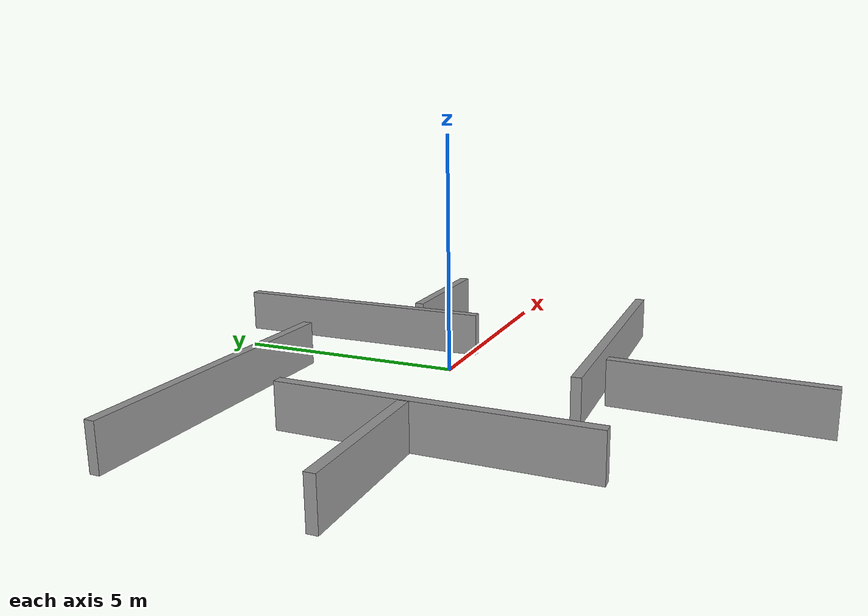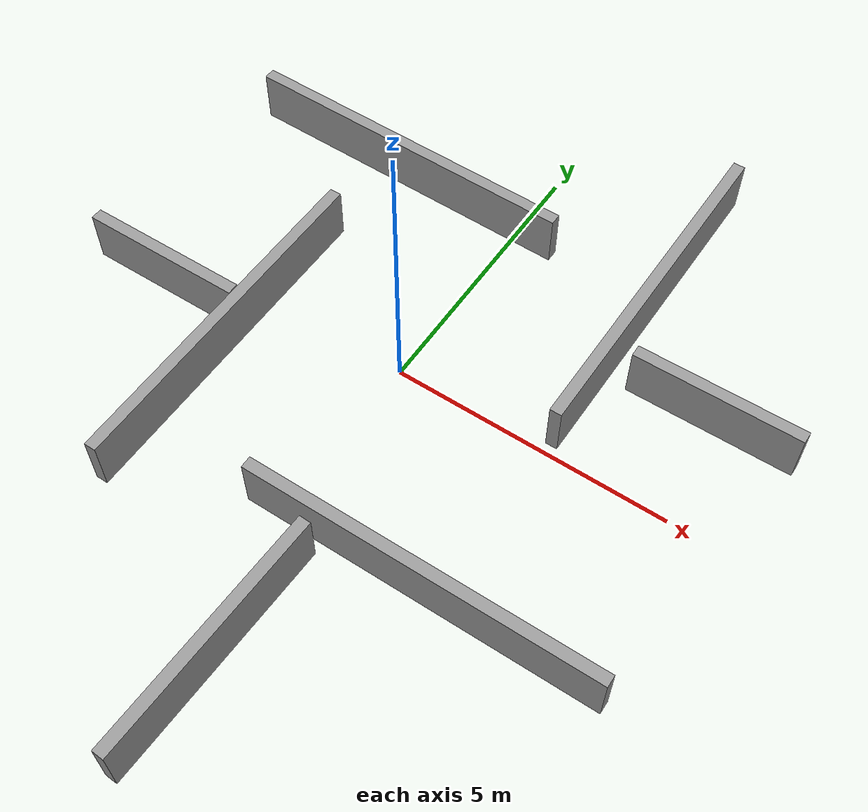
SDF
<?xml version='1.0'?>
<sdf version='1.6'>
  <model name='maze'>
    <link name='link_0'>
      <inertial>
        <mass>1.40189</mass>
        <inertia>
          <ixx>4.97709</ixx>
          <ixy>0</ixy>
          <ixz>0</ixz>
          <iyy>0.122345</iyy>
          <iyz>0</iyz>
          <izz>4.86578</izz>
        </inertia>
        <pose frame=''>0 0 0 0 -0 0</pose>
      </inertial>
      <pose frame=''>-2.98791 -0.93297 0 0 -0 0</pose>
      <visual name='visual'>
        <pose frame=''>0 0 0 0 -0 0</pose>
        <geometry>
          <box>
            <size>0.217394 6.45005 1</size>
          </box>
        </geometry>
        <material>
          <lighting>1</lighting>
          <script>
            <uri>file://media/materials/scripts/gazebo.material</uri>
            <name>Gazebo/Grey</name>
          </script>
          <emissive>0 0 0 1</emissive>
        </material>
        <transparency>0</transparency>
        <cast_shadows>1</cast_shadows>
      </visual>
      <collision name='collision'>
        <laser_retro>0</laser_retro>
        <max_contacts>10</max_contacts>
        <pose frame=''>0 0 0 0 -0 0</pose>
        <geometry>
          <box>
            <size>0.217394 6.45005 1</size>
          </box>
        </geometry>
        <surface>
          <friction>
            <ode>
              <mu>1</mu>
              <mu2>1</mu2>
              <fdir1>0 0 0</fdir1>
              <slip1>0</slip1>
              <slip2>0</slip2>
            </ode>
            <torsional>
              <coefficient>1</coefficient>
              <patch_radius>0</patch_radius>
              <surface_radius>0</surface_radius>
              <use_patch_radius>1</use_patch_radius>
              <ode>
                <slip>0</slip>
              </ode>
            </torsional>
          </friction>
          <bounce>
            <restitution_coefficient>0</restitution_coefficient>
            <threshold>1e+06</threshold>
          </bounce>
          <contact>
            <collide_without_contact>0</collide_without_contact>
            <collide_without_contact_bitmask>1</collide_without_contact_bitmask>
            <collide_bitmask>1</collide_bitmask>
            <ode>
              <soft_cfm>0</soft_cfm>
              <soft_erp>0.2</soft_erp>
              <kp>1e+13</kp>
              <kd>1</kd>
              <max_vel>0.01</max_vel>
              <min_depth>0</min_depth>
            </ode>
            <bullet>
              <split_impulse>1</split_impulse>
              <split_impulse_penetration_threshold>-0.01</split_impulse_penetration_threshold>
              <soft_cfm>0</soft_cfm>
              <soft_erp>0.2</soft_erp>
              <kp>1e+13</kp>
              <kd>1</kd>
            </bullet>
          </contact>
        </surface>
      </collision>
    </link>
    <link name='link_0_clone'>
      <inertial>
        <mass>1.40189</mass>
        <inertia>
          <ixx>4.97709</ixx>
          <ixy>0</ixy>
          <ixz>0</ixz>
          <iyy>0.122345</iyy>
          <iyz>0</iyz>
          <izz>4.86578</izz>
        </inertia>
        <pose frame=''>0 0 0 0 -0 0</pose>
      </inertial>
      <pose frame=''>2.68524 3.67771 0 0 -0 0</pose>
      <visual name='visual'>
        <pose frame=''>0 0 0 0 -0 0</pose>
        <geometry>
          <box>
            <size>0.217394 6.45005 1</size>
          </box>
        </geometry>
        <material>
          <lighting>1</lighting>
          <script>
            <uri>file://media/materials/scripts/gazebo.material</uri>
            <name>Gazebo/Grey</name>
          </script>
          <emissive>0 0 0 1</emissive>
          <shader type='pixel'/>
        </material>
        <transparency>0</transparency>
        <cast_shadows>1</cast_shadows>
      </visual>
      <collision name='collision'>
        <laser_retro>0</laser_retro>
        <max_contacts>10</max_contacts>
        <pose frame=''>0 0 0 0 -0 0</pose>
        <geometry>
          <box>
            <size>0.217394 6.45005 1</size>
          </box>
        </geometry>
        <surface>
          <friction>
            <ode>
              <mu>1</mu>
              <mu2>1</mu2>
              <fdir1>0 0 0</fdir1>
              <slip1>0</slip1>
              <slip2>0</slip2>
            </ode>
            <torsional>
              <coefficient>1</coefficient>
              <patch_radius>0</patch_radius>
              <surface_radius>0</surface_radius>
              <use_patch_radius>1</use_patch_radius>
              <ode>
                <slip>0</slip>
              </ode>
            </torsional>
          </friction>
          <bounce>
            <restitution_coefficient>0</restitution_coefficient>
            <threshold>1e+06</threshold>
          </bounce>
          <contact>
            <collide_without_contact>0</collide_without_contact>
            <collide_without_contact_bitmask>1</collide_without_contact_bitmask>
            <collide_bitmask>1</collide_bitmask>
            <ode>
              <soft_cfm>0</soft_cfm>
              <soft_erp>0.2</soft_erp>
              <kp>1e+13</kp>
              <kd>1</kd>
              <max_vel>0.01</max_vel>
              <min_depth>0</min_depth>
            </ode>
            <bullet>
              <split_impulse>1</split_impulse>
              <split_impulse_penetration_threshold>-0.01</split_impulse_penetration_threshold>
              <soft_cfm>0</soft_cfm>
              <soft_erp>0.2</soft_erp>
              <kp>1e+13</kp>
              <kd>1</kd>
            </bullet>
          </contact>
        </surface>
      </collision>
    </link>
    <link name='link_0_clone_0'>
      <inertial>
        <mass>1.40189</mass>
        <inertia>
          <ixx>4.97709</ixx>
          <ixy>0</ixy>
          <ixz>0</ixz>
          <iyy>0.122345</iyy>
          <iyz>0</iyz>
          <izz>4.86578</izz>
        </inertia>
        <pose frame=''>0 0 0 0 -0 0</pose>
      </inertial>
      <pose frame=''>2.41263 -2.97834 0 0 0 -1.56211</pose>
      <visual name='visual'>
        <pose frame=''>0 0 0 0 -0 0</pose>
        <geometry>
          <box>
            <size>0.217394 6.45005 1</size>
          </box>
        </geometry>
        <material>
          <lighting>1</lighting>
          <script>
            <uri>file://media/materials/scripts/gazebo.material</uri>
            <name>Gazebo/Grey</name>
          </script>
          <emissive>0 0 0 1</emissive>
          <shader type='pixel'/>
        </material>
        <transparency>0</transparency>
        <cast_shadows>1</cast_shadows>
      </visual>
      <collision name='collision'>
        <laser_retro>0</laser_retro>
        <max_contacts>10</max_contacts>
        <pose frame=''>0 0 0 0 -0 0</pose>
        <geometry>
          <box>
            <size>0.217394 6.45005 1</size>
          </box>
        </geometry>
        <surface>
          <friction>
            <ode>
              <mu>1</mu>
              <mu2>1</mu2>
              <fdir1>0 0 0</fdir1>
              <slip1>0</slip1>
              <slip2>0</slip2>
            </ode>
            <torsional>
              <coefficient>1</coefficient>
              <patch_radius>0</patch_radius>
              <surface_radius>0</surface_radius>
              <use_patch_radius>1</use_patch_radius>
              <ode>
                <slip>0</slip>
              </ode>
            </torsional>
          </friction>
          <bounce>
            <restitution_coefficient>0</restitution_coefficient>
            <threshold>1e+06</threshold>
          </bounce>
          <contact>
            <collide_without_contact>0</collide_without_contact>
            <collide_without_contact_bitmask>1</collide_without_contact_bitmask>
            <collide_bitmask>1</collide_bitmask>
            <ode>
              <soft_cfm>0</soft_cfm>
              <soft_erp>0.2</soft_erp>
              <kp>1e+13</kp>
              <kd>1</kd>
              <max_vel>0.01</max_vel>
              <min_depth>0</min_depth>
            </ode>
            <bullet>
              <split_impulse>1</split_impulse>
              <split_impulse_penetration_threshold>-0.01</split_impulse_penetration_threshold>
              <soft_cfm>0</soft_cfm>
              <soft_erp>0.2</soft_erp>
              <kp>1e+13</kp>
              <kd>1</kd>
            </bullet>
          </contact>
        </surface>
      </collision>
    </link>
    <link name='link_0_clone_0_clone'>
      <inertial>
        <mass>0.664891</mass>
        <inertia>
          <ixx>0.573929</ixx>
          <ixy>0</ixy>
          <ixz>0</ixz>
          <iyy>0.0580261</iyy>
          <iyz>0</iyz>
          <izz>0.52114</izz>
        </inertia>
        <pose frame=''>0 0 0 0 -0 0</pose>
      </inertial>
      <pose frame=''>4.66873 2.24063 0 0 0 -1.56211</pose>
      <visual name='visual'>
        <pose frame=''>0 0 0 0 -0 0</pose>
        <geometry>
          <box>
            <size>0.217394 3.05914 1</size>
          </box>
        </geometry>
        <material>
          <lighting>1</lighting>
          <script>
            <uri>file://media/materials/scripts/gazebo.material</uri>
            <name>Gazebo/Grey</name>
          </script>
          <emissive>0 0 0 1</emissive>
          <shader type='pixel'/>
        </material>
        <transparency>0</transparency>
        <cast_shadows>1</cast_shadows>
      </visual>
      <collision name='collision'>
        <laser_retro>0</laser_retro>
        <max_contacts>10</max_contacts>
        <pose frame=''>0 0 0 0 -0 0</pose>
        <geometry>
          <box>
            <size>0.217394 3.05914 1</size>
          </box>
        </geometry>
        <surface>
          <friction>
            <ode>
              <mu>1</mu>
              <mu2>1</mu2>
              <fdir1>0 0 0</fdir1>
              <slip1>0</slip1>
              <slip2>0</slip2>
            </ode>
            <torsional>
              <coefficient>1</coefficient>
              <patch_radius>0</patch_radius>
              <surface_radius>0</surface_radius>
              <use_patch_radius>1</use_patch_radius>
              <ode>
                <slip>0</slip>
              </ode>
            </torsional>
          </friction>
          <bounce>
            <restitution_coefficient>0</restitution_coefficient>
            <threshold>1e+06</threshold>
          </bounce>
          <contact>
            <collide_without_contact>0</collide_without_contact>
            <collide_without_contact_bitmask>1</collide_without_contact_bitmask>
            <collide_bitmask>1</collide_bitmask>
            <ode>
              <soft_cfm>0</soft_cfm>
              <soft_erp>0.2</soft_erp>
              <kp>1e+13</kp>
              <kd>1</kd>
              <max_vel>0.01</max_vel>
              <min_depth>0</min_depth>
            </ode>
            <bullet>
              <split_impulse>1</split_impulse>
              <split_impulse_penetration_threshold>-0.01</split_impulse_penetration_threshold>
              <soft_cfm>0</soft_cfm>
              <soft_erp>0.2</soft_erp>
              <kp>1e+13</kp>
              <kd>1</kd>
            </bullet>
          </contact>
        </surface>
      </collision>
    </link>
    <link name='link_0_clone_0_clone_clone'>
      <inertial>
        <mass>0.664891</mass>
        <inertia>
          <ixx>0.573929</ixx>
          <ixy>0</ixy>
          <ixz>0</ixz>
          <iyy>0.0580261</iyy>
          <iyz>0</iyz>
          <izz>0.52114</izz>
        </inertia>
        <pose frame=''>0 0 0 0 -0 0</pose>
      </inertial>
      <pose frame=''>-4.64294 -0.471695 0 0 0 -1.56211</pose>
      <visual name='visual'>
        <pose frame=''>0 0 0 0 -0 0</pose>
        <geometry>
          <box>
            <size>0.217394 3.05914 1</size>
          </box>
        </geometry>
        <material>
          <lighting>1</lighting>
          <script>
            <uri>file://media/materials/scripts/gazebo.material</uri>
            <name>Gazebo/Grey</name>
          </script>
          <emissive>0 0 0 1</emissive>
          <shader type='pixel'/>
        </material>
        <transparency>0</transparency>
        <cast_shadows>1</cast_shadows>
      </visual>
      <collision name='collision'>
        <laser_retro>0</laser_retro>
        <max_contacts>10</max_contacts>
        <pose frame=''>0 0 0 0 -0 0</pose>
        <geometry>
          <box>
            <size>0.217394 3.05914 1</size>
          </box>
        </geometry>
        <surface>
          <friction>
            <ode>
              <mu>1</mu>
              <mu2>1</mu2>
              <fdir1>0 0 0</fdir1>
              <slip1>0</slip1>
              <slip2>0</slip2>
            </ode>
            <torsional>
              <coefficient>1</coefficient>
              <patch_radius>0</patch_radius>
              <surface_radius>0</surface_radius>
              <use_patch_radius>1</use_patch_radius>
              <ode>
                <slip>0</slip>
              </ode>
            </torsional>
          </friction>
          <bounce>
            <restitution_coefficient>0</restitution_coefficient>
            <threshold>1e+06</threshold>
          </bounce>
          <contact>
            <collide_without_contact>0</collide_without_contact>
            <collide_without_contact_bitmask>1</collide_without_contact_bitmask>
            <collide_bitmask>1</collide_bitmask>
            <ode>
              <soft_cfm>0</soft_cfm>
              <soft_erp>0.2</soft_erp>
              <kp>1e+13</kp>
              <kd>1</kd>
              <max_vel>0.01</max_vel>
              <min_depth>0</min_depth>
            </ode>
            <bullet>
              <split_impulse>1</split_impulse>
              <split_impulse_penetration_threshold>-0.01</split_impulse_penetration_threshold>
              <soft_cfm>0</soft_cfm>
              <soft_erp>0.2</soft_erp>
              <kp>1e+13</kp>
              <kd>1</kd>
            </bullet>
          </contact>
        </surface>
      </collision>
    </link>
    <link name='link_0_clone_0_clone_clone_0'>
      <inertial>
        <mass>0.967863</mass>
        <inertia>
          <ixx>1.68007</ixx>
          <ixy>0</ixy>
          <ixz>0</ixz>
          <iyy>0.0844671</iyy>
          <iyz>0</iyz>
          <izz>1.60322</izz>
        </inertia>
        <pose frame=''>0 0 0 0 -0 0</pose>
      </inertial>
      <pose frame=''>0.487676 -5.51756 0 0 0 -0.031763</pose>
      <visual name='visual'>
        <pose frame=''>0 0 0 0 -0 0</pose>
        <geometry>
          <box>
            <size>0.217394 4.45311 1</size>
          </box>
        </geometry>
        <material>
          <lighting>1</lighting>
          <script>
            <uri>file://media/materials/scripts/gazebo.material</uri>
            <name>Gazebo/Grey</name>
          </script>
          <emissive>0 0 0 1</emissive>
          <shader type='pixel'/>
        </material>
        <transparency>0</transparency>
        <cast_shadows>1</cast_shadows>
      </visual>
      <collision name='collision'>
        <laser_retro>0</laser_retro>
        <max_contacts>10</max_contacts>
        <pose frame=''>0 0 0 0 -0 0</pose>
        <geometry>
          <box>
            <size>0.217394 4.45311 1</size>
          </box>
        </geometry>
        <surface>
          <friction>
            <ode>
              <mu>1</mu>
              <mu2>1</mu2>
              <fdir1>0 0 0</fdir1>
              <slip1>0</slip1>
              <slip2>0</slip2>
            </ode>
            <torsional>
              <coefficient>1</coefficient>
              <patch_radius>0</patch_radius>
              <surface_radius>0</surface_radius>
              <use_patch_radius>1</use_patch_radius>
              <ode>
                <slip>0</slip>
              </ode>
            </torsional>
          </friction>
          <bounce>
            <restitution_coefficient>0</restitution_coefficient>
            <threshold>1e+06</threshold>
          </bounce>
          <contact>
            <collide_without_contact>0</collide_without_contact>
            <collide_without_contact_bitmask>1</collide_without_contact_bitmask>
            <collide_bitmask>1</collide_bitmask>
            <ode>
              <soft_cfm>0</soft_cfm>
              <soft_erp>0.2</soft_erp>
              <kp>1e+13</kp>
              <kd>1</kd>
              <max_vel>0.01</max_vel>
              <min_depth>0</min_depth>
            </ode>
            <bullet>
              <split_impulse>1</split_impulse>
              <split_impulse_penetration_threshold>-0.01</split_impulse_penetration_threshold>
              <soft_cfm>0</soft_cfm>
              <soft_erp>0.2</soft_erp>
              <kp>1e+13</kp>
              <kd>1</kd>
            </bullet>
          </contact>
        </surface>
      </collision>
    </link>
    <link name='link_0_clone_1'>
      <inertial>
        <mass>1.40189</mass>
        <inertia>
          <ixx>4.97709</ixx>
          <ixy>0</ixy>
          <ixz>0</ixz>
          <iyy>0.122345</iyy>
          <iyz>0</iyz>
          <izz>4.86578</izz>
        </inertia>
        <pose frame=''>0 0 0 0 -0 0</pose>
      </inertial>
      <pose frame=''>-2.62343 3.98224 0 0 0 -1.58819</pose>
      <visual name='visual'>
        <pose frame=''>0 0 0 0 -0 0</pose>
        <geometry>
          <box>
            <size>0.217394 6.45005 1</size>
          </box>
        </geometry>
        <material>
          <lighting>1</lighting>
          <script>
            <uri>file://media/materials/scripts/gazebo.material</uri>
            <name>Gazebo/Grey</name>
          </script>
          <emissive>0 0 0 1</emissive>
          <shader type='pixel'/>
        </material>
        <transparency>0</transparency>
        <cast_shadows>1</cast_shadows>
      </visual>
      <collision name='collision'>
        <laser_retro>0</laser_retro>
        <max_contacts>10</max_contacts>
        <pose frame=''>0 0 0 0 -0 0</pose>
        <geometry>
          <box>
            <size>0.217394 6.45005 1</size>
          </box>
        </geometry>
        <surface>
          <friction>
            <ode>
              <mu>1</mu>
              <mu2>1</mu2>
              <fdir1>0 0 0</fdir1>
              <slip1>0</slip1>
              <slip2>0</slip2>
            </ode>
            <torsional>
              <coefficient>1</coefficient>
              <patch_radius>0</patch_radius>
              <surface_radius>0</surface_radius>
              <use_patch_radius>1</use_patch_radius>
              <ode>
                <slip>0</slip>
              </ode>
            </torsional>
          </friction>
          <bounce>
            <restitution_coefficient>0</restitution_coefficient>
            <threshold>1e+06</threshold>
          </bounce>
          <contact>
            <collide_without_contact>0</collide_without_contact>
            <collide_without_contact_bitmask>1</collide_without_contact_bitmask>
            <collide_bitmask>1</collide_bitmask>
            <ode>
              <soft_cfm>0</soft_cfm>
              <soft_erp>0.2</soft_erp>
              <kp>1e+13</kp>
              <kd>1</kd>
              <max_vel>0.01</max_vel>
              <min_depth>0</min_depth>
            </ode>
            <bullet>
              <split_impulse>1</split_impulse>
              <split_impulse_penetration_threshold>-0.01</split_impulse_penetration_threshold>
              <soft_cfm>0</soft_cfm>
              <soft_erp>0.2</soft_erp>
              <kp>1e+13</kp>
              <kd>1</kd>
            </bullet>
          </contact>
        </surface>
      </collision>
    </link>
    <static>1</static>
    <allow_auto_disable>1</allow_auto_disable>
  </model>
</sdf>
